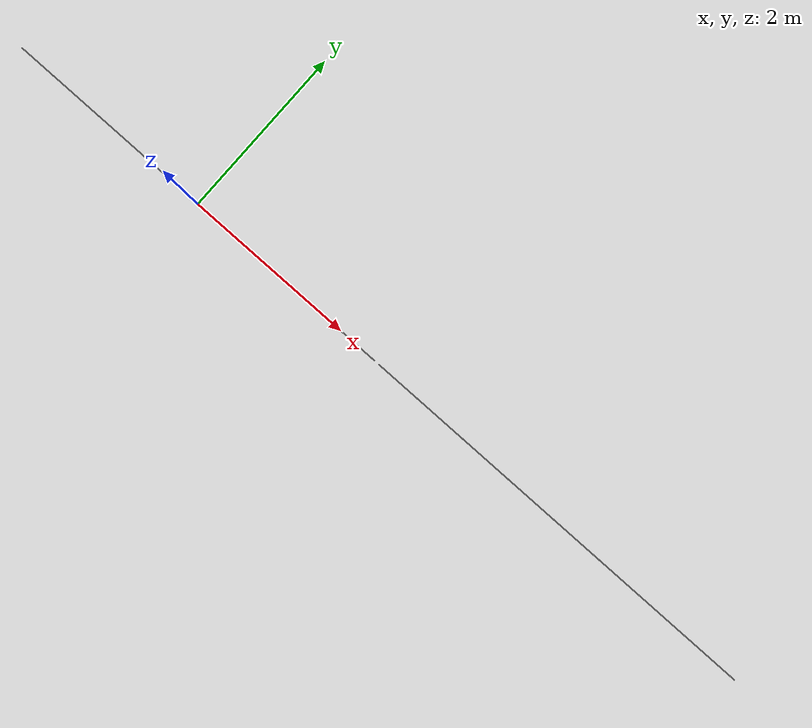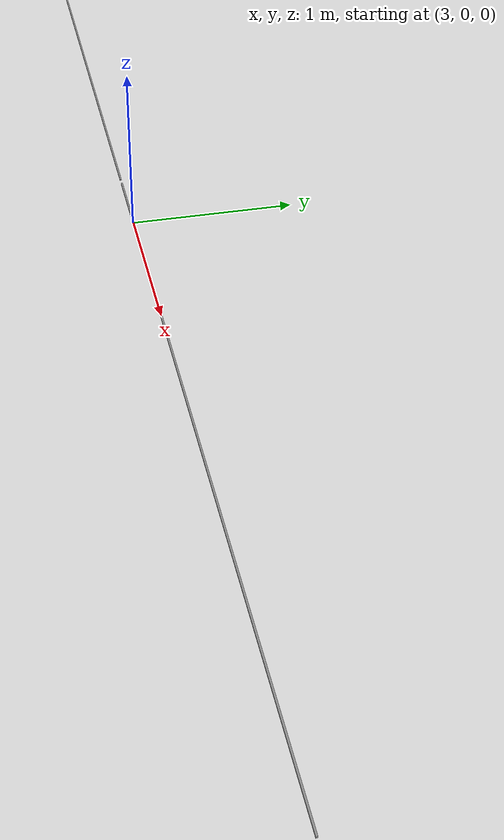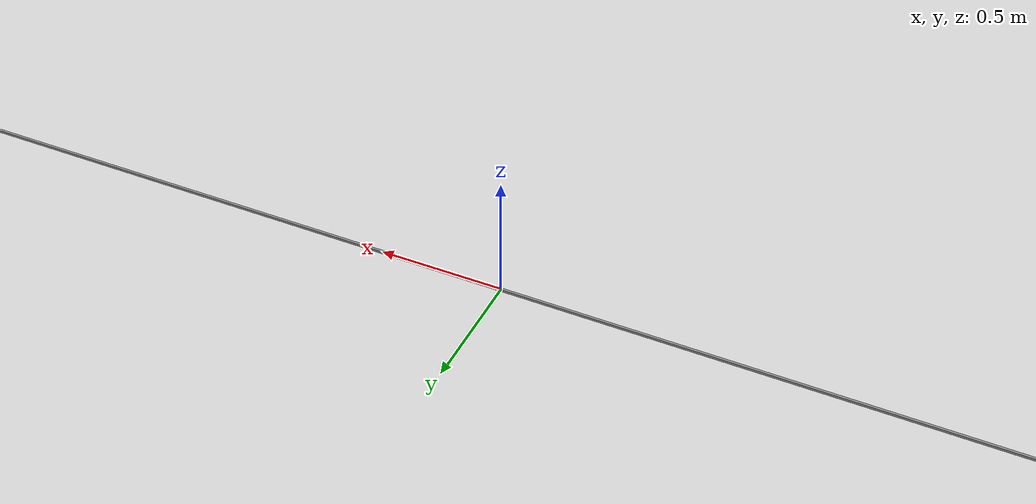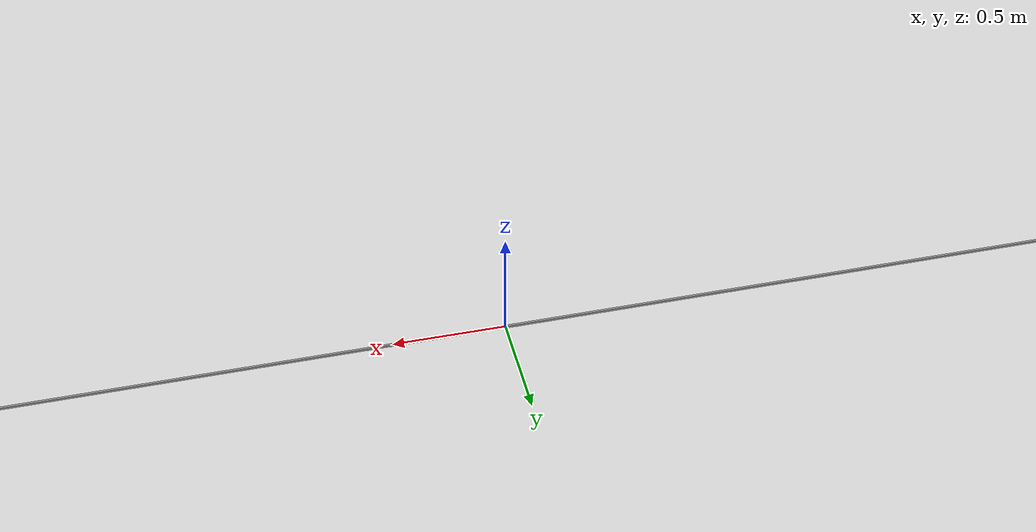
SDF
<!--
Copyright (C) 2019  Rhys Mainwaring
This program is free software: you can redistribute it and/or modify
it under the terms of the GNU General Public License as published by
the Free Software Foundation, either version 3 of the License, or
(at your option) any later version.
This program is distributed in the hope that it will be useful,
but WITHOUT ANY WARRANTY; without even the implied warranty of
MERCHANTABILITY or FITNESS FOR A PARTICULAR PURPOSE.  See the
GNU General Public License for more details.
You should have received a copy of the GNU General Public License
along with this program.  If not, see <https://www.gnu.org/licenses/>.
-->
<?xml version="1.0" ?>
<!--
  Specifications:

  L = 4.95m
  C = 0m
  +/- 2.475m

  Mass is calculated for steel. 4.95m x 0.01m x 0.01m is 3.81kg.
  Links are offset at 5.0m, 10.0m, etc.
  Joints must be offset -2.5m
-->
<sdf version="1.6">
  <model name="chain_long">
    <static>false</static>

    <include>
      <pose>0 0 0 0 0 0</pose>
      <uri>model://chain_link_long</uri>
      <name>chain_link0</name>
    </include>

    <include>
      <pose>5.0 0 0 0 0 0</pose>
      <uri>model://chain_link_long</uri>
      <name>chain_link1</name>
    </include>

    <joint type="ball" name="chain_link_0_1_joint">
      <pose>-2.5 0 0 0 0 0</pose>
      <parent>chain_link0::base_link</parent>
      <child>chain_link1::base_link</child>
    </joint>

  </model>
</sdf>

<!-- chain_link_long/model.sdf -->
<sdf version='1.6'>

  <model name='chain_link_long'>
    <pose>0 0 0 0 0 0</pose>
    <static>false</static>
    <link name="base_link">
      <visual name="base_visual">
        <geometry>
          <box>
            <size>4.95 0.01 0.01</size>
          </box>
        </geometry>
        <material>
          <script>
            <name>Gazebo/Grey</name>
          </script>
        </material>
      </visual>
      <collision name="base_collision">
        <max_contacts>2</max_contacts>
        <geometry>
          <box>
            <size>4.95 0.01 0.01</size>
          </box>
        </geometry>
      </collision>
      <inertial>
        <pose>0 0 0 0 0 0</pose>
        <mass>3.81</mass>
        <inertia>
          <ixx>0.0000635</ixx>
          <ixy>0</ixy>
          <iyy>7.78</iyy>
          <iyz>0</iyz>
          <izz>7.78</izz>
        </inertia>
      </inertial>
    </link>
  </model>
</sdf>
